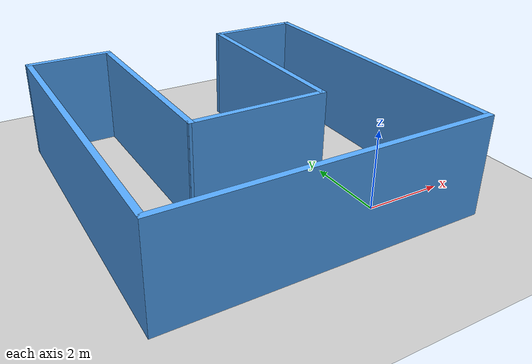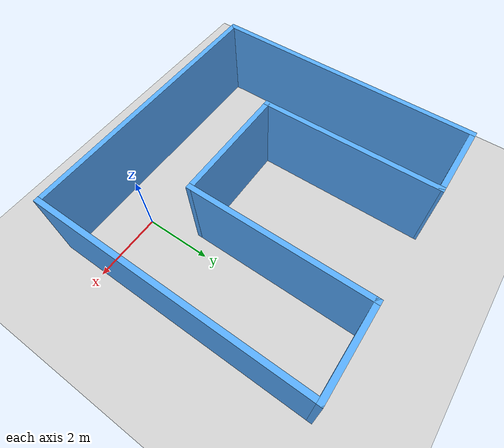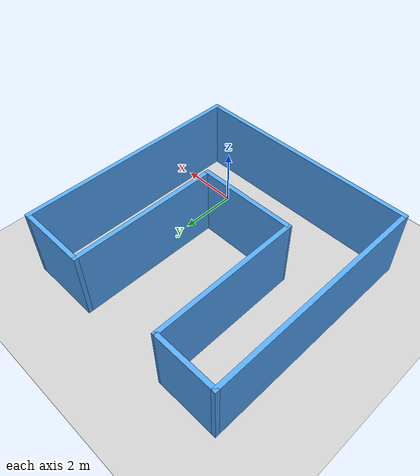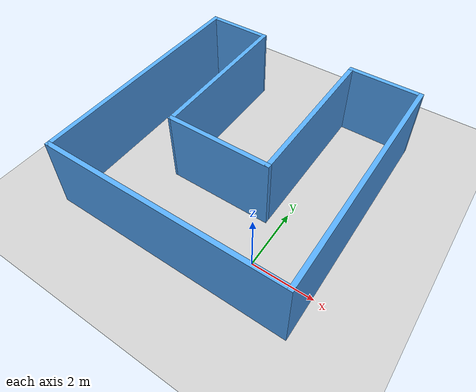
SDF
<sdf version="1.6">
 <world name="default">
  <light name="sun" type="directional">
   <pose>0 0 10 0 -0 0</pose>
   <diffuse>0.8 0.8 0.8 1</diffuse>
   <specular>0.2 0.2 0.2 1</specular>
   <attenuation>
    <range>1000</range>
    <constant>0.9</constant>
    <linear>0.01</linear>
    <quadratic>0.001</quadratic>
   </attenuation>
   <direction>-0.5 0.1 -0.9</direction>
  </light>
  <model name="ground_plane">
   <static>1</static>
   <link name="link">
    <collision name="collision">
     <geometry><plane><normal>0 0 1</normal><size>100 100</size></plane></geometry>
     <surface>
      <contact><collide_bitmask>65535</collide_bitmask></contact>
      <friction><ode><mu>100</mu><mu2>50</mu2></ode></friction>
     </surface>
    </collision>
    <visual name="visual">
     <cast_shadows>0</cast_shadows>
     <geometry><plane><normal>0 0 1</normal><size>100 100</size></plane></geometry>
     <material>
      <script><uri>file://media/materials/scripts/gazebo.material</uri><name>Gazebo/Grey</name></script>
     </material>
    </visual>
   </link>
  </model>
  <gravity>0 0 -9.8</gravity>
  <magnetic_field>6e-06 2.3e-05 -4.2e-05</magnetic_field>
  <atmosphere type="adiabatic"/>
  <physics name="default_physics" default="0" type="ode">
   <max_step_size>0.001</max_step_size>
   <real_time_factor>1</real_time_factor>
   <real_time_update_rate>1000</real_time_update_rate>
  </physics>
  <scene><ambient>0.4 0.4 0.4 1</ambient><background>0.7 0.7 0.7 1</background><shadows>1</shadows></scene>
  <spherical_coordinates>
   <surface_model>EARTH_WGS84</surface_model>
   <latitude_deg>0</latitude_deg>
   <longitude_deg>0</longitude_deg>
   <elevation>0</elevation>
   <heading_deg>0</heading_deg>
  </spherical_coordinates>
  <model name="Home.model">
   <pose>-2.07386 2.64767 0 0 -0 0</pose>
   <link name="Wall_1">
    <collision name="Wall_1_Collision">
     <geometry><box><size>8 0.15 2.5</size></box></geometry>
     <pose>0 0 1.25 0 -0 0</pose>
    </collision>
    <visual name="Wall_1_Visual">
     <pose>0 0 1.25 0 -0 0</pose>
     <geometry><box><size>8 0.15 2.5</size></box></geometry>
     <material>
      <script><uri>file://media/materials/scripts/gazebo.material</uri><name>Gazebo/Grey</name></script>
      <ambient>0.333333 0.666667 1 1</ambient>
     </material>
     <meta><layer>0</layer></meta>
    </visual>
    <pose>-3.925 -0.000366 0 0 0 -1.5708</pose>
   </link>
   <link name="Wall_10">
    <collision name="Wall_10_Collision">
     <geometry><box><size>5.25024 0.15 2.5</size></box></geometry>
     <pose>0 0 1.25 0 -0 0</pose>
    </collision>
    <visual name="Wall_10_Visual">
     <pose>0 0 1.25 0 -0 0</pose>
     <geometry><box><size>5.25024 0.15 2.5</size></box></geometry>
     <material>
      <script><uri>file://media/materials/scripts/gazebo.material</uri><name>Gazebo/Grey</name></script>
      <ambient>0.333333 0.666667 1 1</ambient>
     </material>
     <meta><layer>0</layer></meta>
    </visual>
    <pose>-1.8 1.37463 0 0 -0 1.5806</pose>
   </link>
   <link name="Wall_2">
    <collision name="Wall_2_Collision">
     <geometry><box><size>8 0.15 2.5</size></box></geometry>
     <pose>0 0 1.25 0 -0 0</pose>
    </collision>
    <visual name="Wall_2_Visual">
     <pose>0 0 1.25 0 -0 0</pose>
     <geometry><box><size>8 0.15 2.5</size></box></geometry>
     <material>
      <script><uri>file://media/materials/scripts/gazebo.material</uri><name>Gazebo/Grey</name></script>
      <ambient>0.333333 0.666667 1 1</ambient>
     </material>
     <meta><layer>0</layer></meta>
    </visual>
    <pose>0 -3.92537 0 0 -0 0</pose>
   </link>
   <link name="Wall_3">
    <collision name="Wall_3_Collision">
     <geometry><box><size>8 0.15 2.5</size></box></geometry>
     <pose>0 0 1.25 0 -0 0</pose>
    </collision>
    <visual name="Wall_3_Visual">
     <pose>0 0 1.25 0 -0 0</pose>
     <geometry><box><size>8 0.15 2.5</size></box></geometry>
     <material>
      <script><uri>file://media/materials/scripts/gazebo.material</uri><name>Gazebo/Grey</name></script>
      <ambient>0.333333 0.666667 1 1</ambient>
     </material>
     <meta><layer>0</layer></meta>
    </visual>
    <pose>3.925 -0.000366 0 0 -0 1.5708</pose>
   </link>
   <link name="Wall_4">
    <collision name="Wall_4_Collision">
     <geometry><box><size>2.5 0.15 2.5</size></box></geometry>
     <pose>0 0 1.25 0 -0 0</pose>
    </collision>
    <visual name="Wall_4_Visual">
     <pose>0 0 1.25 0 -0 0</pose>
     <geometry><box><size>2.5 0.15 2.5</size></box></geometry>
     <material>
      <script><uri>file://media/materials/scripts/gazebo.material</uri><name>Gazebo/Grey</name></script>
      <ambient>0.333333 0.666667 1 1</ambient>
     </material>
     <meta><layer>0</layer></meta>
    </visual>
    <pose>2.75 3.92463 0 0 -0 3.14159</pose>
   </link>
   <link name="Wall_6">
    <collision name="Wall_6_Collision">
     <geometry><box><size>2.25 0.15 2.5</size></box></geometry>
     <pose>0 0 1.25 0 -0 0</pose>
    </collision>
    <visual name="Wall_6_Visual">
     <pose>0 0 1.25 0 -0 0</pose>
     <geometry><box><size>2.25 0.15 2.5</size></box></geometry>
     <material>
      <script><uri>file://media/materials/scripts/gazebo.material</uri><name>Gazebo/Grey</name></script>
      <ambient>0.333333 0.666667 1 1</ambient>
     </material>
     <meta><layer>0</layer></meta>
    </visual>
    <pose>-2.875 3.92463 0 0 -0 0</pose>
   </link>
   <link name="Wall_8">
    <collision name="Wall_8_Collision">
     <geometry><box><size>5.25 0.15 2.5</size></box></geometry>
     <pose>0 0 1.25 0 -0 0</pose>
    </collision>
    <visual name="Wall_8_Visual">
     <pose>0 0 1.25 0 -0 0</pose>
     <geometry><box><size>5.25 0.15 2.5</size></box></geometry>
     <material>
      <script><uri>file://media/materials/scripts/gazebo.material</uri><name>Gazebo/Grey</name></script>
      <ambient>0.333333 0.666667 1 1</ambient>
     </material>
     <meta><layer>0</layer></meta>
    </visual>
    <pose>1.575 1.37463 0 0 0 -1.5708</pose>
   </link>
   <link name="Wall_9">
    <collision name="Wall_9_Collision">
     <geometry><box><size>3.5 0.15 2.5</size></box></geometry>
     <pose>0 0 1.25 0 -0 0</pose>
    </collision>
    <visual name="Wall_9_Visual">
     <pose>0 0 1.25 0 -0 0</pose>
     <geometry><box><size>3.5 0.15 2.5</size></box></geometry>
     <material>
      <script><uri>file://media/materials/scripts/gazebo.material</uri><name>Gazebo/Grey</name></script>
      <ambient>0.333333 0.666667 1 1</ambient>
     </material>
     <meta><layer>0</layer></meta>
    </visual>
    <pose>-0.1 -1.17537 0 0 -0 3.14159</pose>
   </link>
   <static>1</static>
  </model>
 </world>
</sdf>
